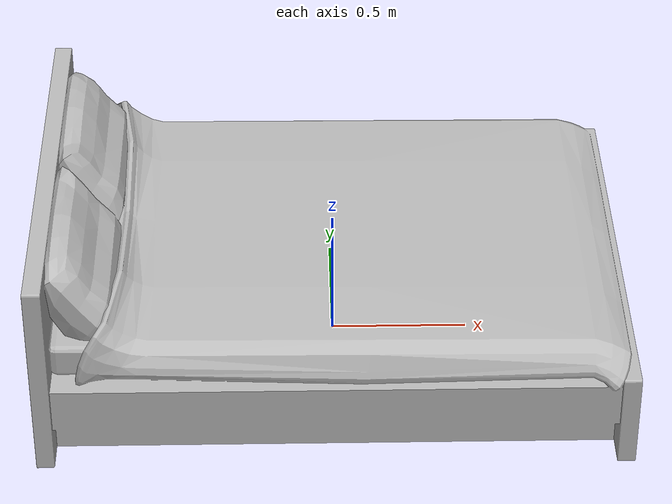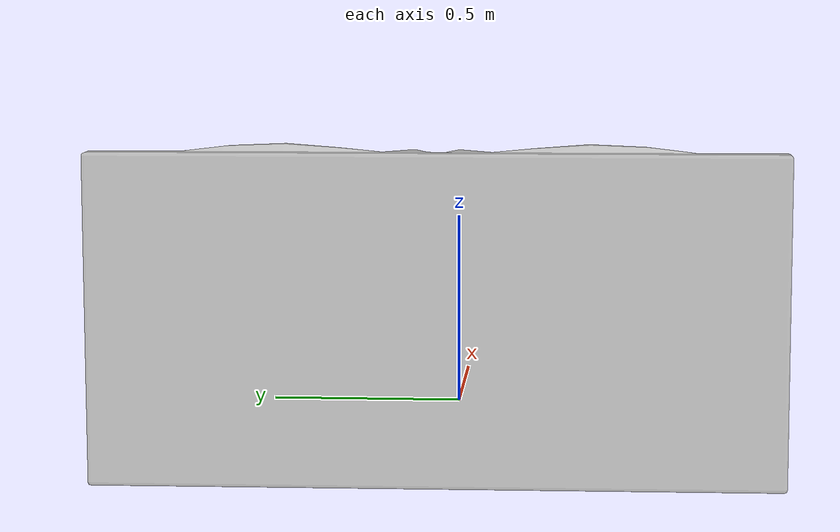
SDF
<?xml version='1.0'?>
<sdf version='1.4'>
  <model name='75'>
    <pose>0 0 0 0 0 0</pose>
    <static>true</static>
    <link name='link'>
      <collision name='collision'>
        <pose>0 0 0 0 0 0</pose>
        <geometry>
          <box>
            <size>2.1 1.61002 2</size>
          </box>
        </geometry>
      </collision>
      <visual name='visual'>
        <pose>0 0 0 0 0 0</pose>
        <geometry>
          <mesh><uri>model://75/75.dae</uri></mesh>
        </geometry>
      </visual>
    </link>
  </model>
</sdf>
